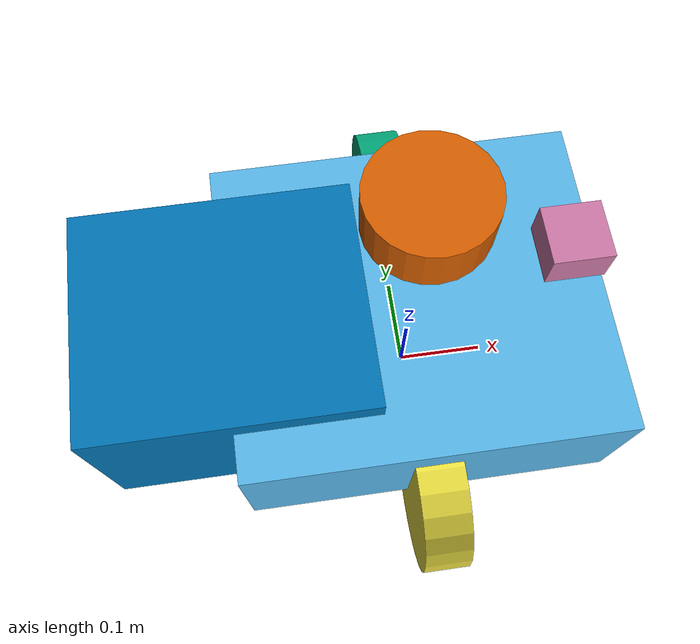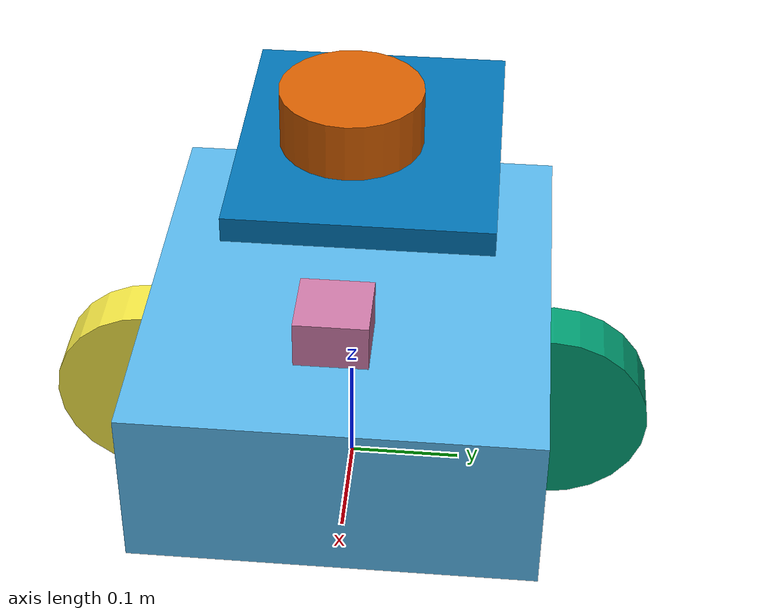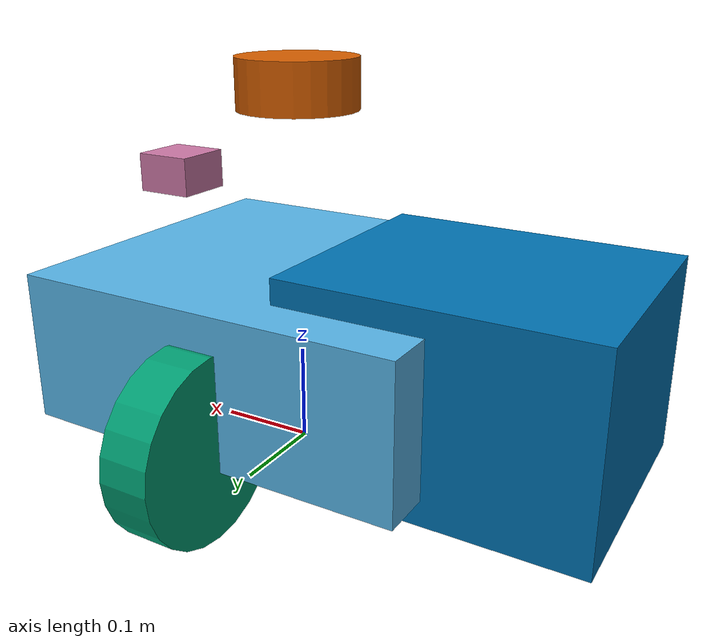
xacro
<?xml version="1.0"?>
<robot name="companio" xmlns:xacro="http://www.ros.org/wiki/xacro">

<xacro:property name="wheel_radius" value="0.09"/>
<xacro:property name="wheel_width" value="0.05"/>

<link name="base_footprint"/>

<joint name="base_joint" type="fixed">
  <parent link="base_footprint"/>
  <child link="base_link"/>
  <origin xyz="0 0 0.125"/> <!-- Adjusted considering base_link box height 0.15 + clearance -->
</joint>

<link name="base_link">
  <inertial>
    <mass value="20"/>
    <origin xyz="0 0 0"/>
    <inertia ixx="1" ixy="0" ixz="0" iyy="1" iyz="0" izz="1"/>
  </inertial>

  <visual>
    <geometry>
      <box size="0.4 0.35 0.15"/>
    </geometry>
  </visual>

  <collision>
    <geometry>
      <box size="0.4 0.35 0.15"/>
    </geometry>
  </collision>
</link>

<!-- LEFT WHEEL -->
<link name="left_wheel">
  <visual>
    <geometry>
      <cylinder radius="${wheel_radius}" length="${wheel_width}"/>
    </geometry>
  </visual>
</link>

<joint name="left_wheel_joint" type="continuous">
  <parent link="base_link"/>
  <child link="left_wheel"/>
  <origin xyz="0 0.18 -0.05" rpy="0 1.57 0"/>
  <axis xyz="0 0 1"/>
</joint>

<!-- RIGHT WHEEL -->
<link name="right_wheel">
  <visual>
    <geometry>
      <cylinder radius="${wheel_radius}" length="${wheel_width}"/>
    </geometry>
  </visual>
</link>

<joint name="right_wheel_joint" type="continuous">
  <parent link="base_link"/>
  <child link="right_wheel"/>
  <origin xyz="0 -0.18 -0.05" rpy="0 1.57 0"/>
  <axis xyz="0 0 1"/>
</joint>

<!-- BATTERY BOX -->
<link name="battery_box">
  <visual>
    <geometry>
      <box size="0.3 0.25 0.2"/>
    </geometry>
  </visual>
</link>

<joint name="battery_joint" type="fixed">
  <parent link="base_link"/>
  <child link="battery_box"/>
  <origin xyz="-0.2 0 0"/>
</joint>

<!-- LIDAR -->
<link name="laser">
  <visual>
    <geometry>
      <cylinder radius="0.06" length="0.05"/>
    </geometry>
  </visual>
</link>

<joint name="lidar_joint" type="fixed">
  <parent link="base_link"/>
  <child link="laser"/>
  <origin xyz="0 0 0.25" rpy="0 0 3.14159"/>
</joint>

<!-- CAMERA -->
<link name="camera_link">
  <visual>
    <geometry>
      <box size="0.06 0.06 0.04"/>
    </geometry>
  </visual>
</link>

<joint name="camera_tilt_joint" type="revolute">
  <parent link="base_link"/>
  <child link="camera_link"/>
  <origin xyz="0.15 0 0.15"/>
  <axis xyz="0 1 0"/>
  <limit effort="10" velocity="1" lower="-1.57" upper="1.57"/>
</joint>

<!-- LEFT ARM -->
<link name="left_arm_base"/>

<joint name="left_shoulder_joint" type="revolute">
  <parent link="base_link"/>
  <child link="left_arm_base"/>
  <origin xyz="0.1 0.18 0.15"/>
  <axis xyz="0 0 1"/>
  <limit effort="10" velocity="1" lower="-3.14" upper="3.14"/>
</joint>

<link name="left_elbow_link"/>

<joint name="left_elbow_joint" type="revolute">
  <parent link="left_arm_base"/>
  <child link="left_elbow_link"/>
  <origin xyz="0.12 0 0"/>
  <axis xyz="0 1 0"/>
  <limit effort="10" velocity="1" lower="-3.14" upper="3.14"/>
</joint>

<link name="left_gripper_rotate"/>

<joint name="left_gripper_rotate_joint" type="revolute">
  <parent link="left_elbow_link"/>
  <child link="left_gripper_rotate"/>
  <origin xyz="0.12 0 0"/>
  <axis xyz="1 0 0"/>
  <limit effort="10" velocity="1" lower="-3.14" upper="3.14"/>
</joint>

<link name="left_gripper"/>

<joint name="left_gripper_joint" type="revolute">
  <parent link="left_gripper_rotate"/>
  <child link="left_gripper"/>
  <origin xyz="0.05 0 0"/>
  <axis xyz="0 1 0"/>
  <limit effort="10" velocity="1" lower="-3.14" upper="3.14"/>
</joint>

<!-- RIGHT ARM -->
<link name="right_arm_base"/>

<joint name="right_shoulder_joint" type="revolute">
  <parent link="base_link"/>
  <child link="right_arm_base"/>
  <origin xyz="0.1 -0.18 0.15"/>
  <axis xyz="0 0 1"/>
  <limit effort="10" velocity="1" lower="-3.14" upper="3.14"/>
</joint>

<link name="right_elbow_link"/>

<joint name="right_elbow_joint" type="revolute">
  <parent link="right_arm_base"/>
  <child link="right_elbow_link"/>
  <origin xyz="0.12 0 0"/>
  <axis xyz="0 1 0"/>
  <limit effort="10" velocity="1" lower="-3.14" upper="3.14"/>
</joint>

<link name="right_gripper_rotate"/>

<joint name="right_gripper_rotate_joint" type="revolute">
  <parent link="right_elbow_link"/>
  <child link="right_gripper_rotate"/>
  <origin xyz="0.12 0 0"/>
  <axis xyz="1 0 0"/>
  <limit effort="10" velocity="1" lower="-3.14" upper="3.14"/>
</joint>

<link name="right_gripper"/>

<joint name="right_gripper_joint" type="revolute">
  <parent link="right_gripper_rotate"/>
  <child link="right_gripper"/>
  <origin xyz="0.05 0 0"/>
  <axis xyz="0 1 0"/>
  <limit effort="10" velocity="1" lower="-3.14" upper="3.14"/>
</joint>

</robot>
